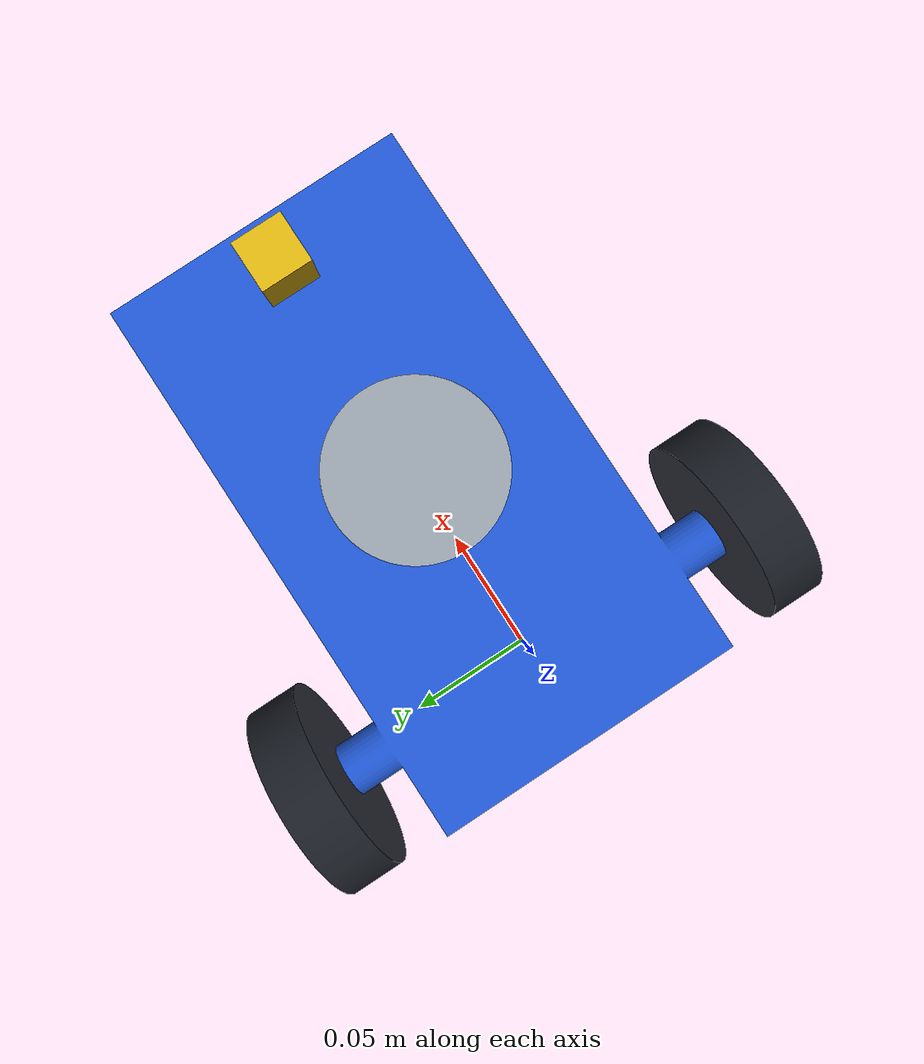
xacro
<?xml version="1.0" encoding="utf-8"?>
<robot xmlns:xacro="http://www.ros.org/wiki/xacro" name="bajana_solis_ws2">
  <xacro:include filename="$(find bajana_solis_ws2_description)/urdf/materials.xacro" />
  <xacro:include filename="$(find bajana_solis_ws2_description)/urdf/bajana_solis_ws2.gazebo" />
  <link name="base_footprint" />
  <link name="base_link">
    <inertial>
      <origin xyz="-0.0008171375762108088 0.0 0.040073983365064174" rpy="0 0 0" />
      <mass value="9.054106572251076" />
      <inertia ixx="0.012497" iyy="0.036049" izz="0.04472" ixy="-0.0" iyz="0.0" ixz="-1.9e-05" />
    </inertial>
    <visual name="base_link_visual">
      <origin xyz="0 0 0" rpy="0 0 0" />
      <geometry>
        <mesh filename="package://bajana_solis_ws2_description/meshes/base_link.stl" scale="0.001 0.001 0.001" />
      </geometry>
      <material name="blue" />
    </visual>
    <collision name="base_link_collision">
      <origin xyz="0 0 0" rpy="0 0 0" />
      <geometry>
        <mesh filename="package://bajana_solis_ws2_description/meshes/base_link.stl" scale="0.001 0.001 0.001" />
      </geometry>
    </collision>
  </link>
  <link name="lidar_1">
    <inertial>
      <origin xyz="0.0 0.0 0.0050000000000000044" rpy="0 0 0" />
      <mass value="0.22195352097611892" />
      <inertia ixx="5.2e-05" iyy="5.2e-05" izz="0.0001" ixy="0.0" iyz="0.0" ixz="0.0" />
    </inertial>
    <visual name="lidar_1_visual">
      <origin xyz="-0.0 -0.0 -0.0875" rpy="0 0 0" />
      <geometry>
        <mesh filename="package://bajana_solis_ws2_description/meshes/lidar_1.stl" scale="0.001 0.001 0.001" />
      </geometry>
      <material name="silver" />
    </visual>
    <collision name="lidar_1_collision">
      <origin xyz="-0.0 -0.0 -0.0875" rpy="0 0 0" />
      <geometry>
        <mesh filename="package://bajana_solis_ws2_description/meshes/lidar_1.stl" scale="0.001 0.001 0.001" />
      </geometry>
    </collision>
  </link>
  <link name="camera_1">
    <inertial>
      <origin xyz="-0.019999999999999962 0.0 0.010000000000000002" rpy="0 0 0" />
      <mass value="0.0628" />
      <inertia ixx="4e-06" iyy="4e-06" izz="4e-06" ixy="0.0" iyz="0.0" ixz="0.0" />
    </inertial>
    <visual name="camera_1_visual">
      <origin xyz="-0.11 0.0 -0.0575" rpy="0 0 0" />
      <geometry>
        <mesh filename="package://bajana_solis_ws2_description/meshes/camera_1.stl" scale="0.001 0.001 0.001" />
      </geometry>
      <material name="yellow" />
    </visual>
    <collision name="camera_1_collision">
      <origin xyz="-0.11 0.0 -0.0575" rpy="0 0 0" />
      <geometry>
        <mesh filename="package://bajana_solis_ws2_description/meshes/camera_1.stl" scale="0.001 0.001 0.001" />
      </geometry>
    </collision>
  </link>
  <link name="castor_1">
    <inertial>
      <origin xyz="-0.04999999999999997 0.05999999999999997 -0.006391402495744707" rpy="0 0 0" />
      <mass value="0.16272266932459054" />
      <inertia ixx="2.2e-05" iyy="2.2e-05" izz="3.8e-05" ixy="-0.0" iyz="-0.0" ixz="0.0" />
    </inertial>
    <visual name="castor_1_visual">
      <origin xyz="-0.11 0.06 -0.0175" rpy="0 0 0" />
      <geometry>
        <mesh filename="package://bajana_solis_ws2_description/meshes/castor_1.stl" scale="0.001 0.001 0.001" />
      </geometry>
      <material name="graphite" />
    </visual>
    <collision name="castor_1_collision">
      <origin xyz="-0.05 0.06 -0.0075" rpy="0 0 0" />
      <geometry>
        <sphere radius="0.01" />
      </geometry>
    </collision>
  </link>
  <link name="r_wheel_1">
    <inertial>
      <origin xyz="0 0 0" rpy="0 0 0" />
      <mass value="0.6936047530503713" />
      <inertia ixx="0.000267" iyy="0.000488" izz="0.000267" ixy="0.0" iyz="0.0" ixz="-0.0" />
    </inertial>
    <visual name="r_wheel_1_visual">
      <origin xyz="0.075 0.09 -0.0375" rpy="0 0 0" />
      <geometry>
        <mesh filename="package://bajana_solis_ws2_description/meshes/r_wheel_1.stl" scale="0.001 0.001 0.001" />
      </geometry>
      <material name="graphite" />
    </visual>
    <collision name="r_wheel_1_collision">
      <origin xyz="0 0 0" rpy="0 0 0" />
      <geometry>
        <mesh filename="package://bajana_solis_ws2_description/meshes/wheel_contact.stl" scale="0.0375 0.01 0.0375" />
      </geometry>
    </collision>
  </link>
  <link name="l_wheel_1">
    <inertial>
      <origin xyz="0 0 0" rpy="0 0 0" />
      <mass value="0.6936047530503713" />
      <inertia ixx="0.000267" iyy="0.000488" izz="0.000267" ixy="0.0" iyz="0.0" ixz="-0.0" />
    </inertial>
    <visual name="l_wheel_1_visual">
      <origin xyz="0.075 -0.09 -0.0375" rpy="0 0 0" />
      <geometry>
        <mesh filename="package://bajana_solis_ws2_description/meshes/l_wheel_1.stl" scale="0.001 0.001 0.001" />
      </geometry>
      <material name="graphite" />
    </visual>
    <collision name="l_wheel_1_collision">
      <origin xyz="0 0 0" rpy="0 0 0" />
      <geometry>
        <mesh filename="package://bajana_solis_ws2_description/meshes/wheel_contact.stl" scale="0.0375 0.01 0.0375" />
      </geometry>
    </collision>
  </link>
  <joint name="lidar_join" type="fixed">
    <origin xyz="0.0 0.0 0.0875" rpy="0 0 0" />
    <parent link="base_link" />
    <child link="lidar_1" />
  </joint>
  <joint name="camera_join" type="fixed">
    <origin xyz="0.11 0.0 0.0575" rpy="0 0 0" />
    <parent link="base_link" />
    <child link="camera_1" />
  </joint>
  <joint name="castor_join" type="fixed">
    <origin xyz="0.11 -0.06 0.0175" rpy="0 0 0" />
    <parent link="base_link" />
    <child link="castor_1" />
  </joint>
  <joint name="r_join" type="continuous">
    <origin xyz="-0.075 -0.09 0.0375" rpy="0 0 0" />
    <parent link="base_link" />
    <child link="r_wheel_1" />
    <axis xyz="0 1 0" />
    <dynamics damping="0.001" friction="0" />
  </joint>
  <joint name="l_join" type="continuous">
    <origin xyz="-0.075 0.09 0.0375" rpy="0 0 0" />
    <parent link="base_link" />
    <child link="l_wheel_1" />
    <axis xyz="0 1 0" />
    <dynamics damping="0.001" friction="0" />
  </joint>
  <joint name="base_footprint_joint" type="fixed">
    <origin xyz="0.075 0 0" rpy="0 0 0" />
    <parent link="base_footprint" />
    <child link="base_link" />
  </joint>
</robot>

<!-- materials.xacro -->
<robot xmlns:xacro="http://www.ros.org/wiki/xacro">
  <xacro:property name="yellow_rgba" value="0.9803921569 0.8 0.0823529412 1" />
  <xacro:property name="silver_rgba" value="0.6666666667 0.7058823529 0.7529411765 1" />
  <xacro:property name="graphite_rgba" value="0.1254901961 0.1411764706 0.1725490196 1" />
  <xacro:property name="blue_rgba" value="0.1450980392 0.3882352941 0.9215686275 1" />
  <material name="blue">
    <color rgba="${blue_rgba}" />
  </material>
  <material name="graphite">
    <color rgba="${graphite_rgba}" />
  </material>
  <material name="silver">
    <color rgba="${silver_rgba}" />
  </material>
  <material name="yellow">
    <color rgba="${yellow_rgba}" />
  </material>
</robot>
